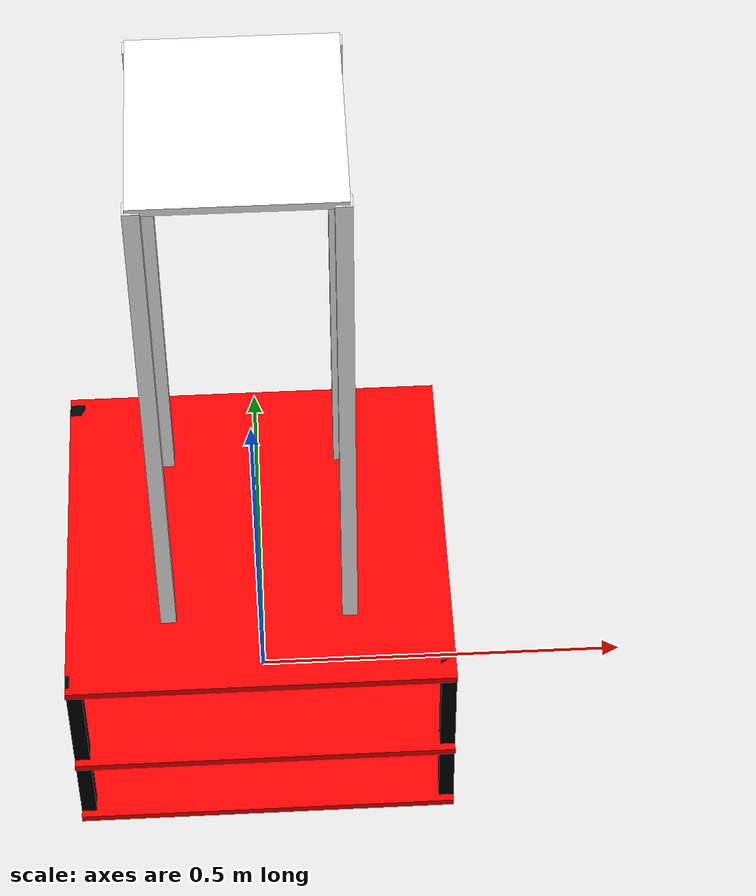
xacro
<?xml version="1.0"?>
<robot xmlns:xacro="http://www.ros.org/wiki/xacro"  name="robot">

    <xacro:arg name="use_ros2_control" default="true"/>
    <xacro:arg name="sim_mode" default="false"/>

    <xacro:include filename="robot_core.xacro" />

    <xacro:if value="$(arg use_ros2_control)">
        <xacro:include filename="ros2_control.xacro" />
    </xacro:if>
    <xacro:unless value="$(arg use_ros2_control)">
        <xacro:include filename="gazebo_control.xacro" />
    </xacro:unless>
    <xacro:include filename="lidar.xacro" />

</robot>

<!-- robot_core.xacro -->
<robot xmlns:xacro="http://www.ros.org/wiki/xacro">

  <!-- Include inertial macro definitions -->
  <xacro:include filename="inertial_macros.xacro"/>

  <!-- Materials -->
  <material name="white"><color rgba="1 1 1 1"/></material>
  <material name="blue"><color rgba="0.2 0.2 1 1"/></material>
  <material name="black"><color rgba="0 0 0 1"/></material>
  <material name="red"><color rgba="1 0 0 1"/></material>

  <!-- Base Link -->
  <link name="base_link"/>

  <!-- Chassis -->
  <joint name="chassis_joint" type="fixed">
    <parent link="base_link"/>
    <child link="chassis"/>
    <origin xyz="0 0 0"/>
  </joint>

  <link name="chassis"/>

  <!-- Top Pillars Macro -->
  <xacro:macro name="top_pillar" params="name x y z">
    <joint name="${name}_joint" type="fixed">
      <parent link="chassis"/>
      <child link="${name}"/>
      <origin xyz="${x} ${y} ${z}"/>
    </joint>
    <link name="${name}">
      <visual>
        <geometry><box size="0.02 0.02 0.74"/></geometry>
        <laser_retro>0.0</laser_retro>
        <material name="white"/>
      </visual>
      <collision>
        <geometry><box size="0.02 0.02 0.74"/></geometry>
      </collision>
      <xacro:inertial_box mass="0.3" x="0.02" y="0.02" z="0.74">
        <origin xyz="0 0 0" rpy="0 0 0"/>
      </xacro:inertial_box>
    </link>
  </xacro:macro>

  <!-- Top Four Pillars -->
  <xacro:top_pillar name="top_pillar_fl" x="0.1175" y="0.1325" z="0.66"/>
  <xacro:top_pillar name="top_pillar_fr" x="0.1175" y="-0.1325" z="0.66"/>
  <xacro:top_pillar name="top_pillar_rl" x="-0.1175" y="0.1325" z="0.66"/>
  <xacro:top_pillar name="top_pillar_rr" x="-0.1175" y="-0.1325" z="0.66"/>

  <!-- Bottom Pillars Macro -->
  <!-- Bottom Pillars Macro -->
<xacro:macro name="pillar" params="name x y z">
  <joint name="${name}_joint" type="fixed">
    <parent link="chassis"/>
    <child link="${name}"/>
    <origin xyz="${x} ${y} ${z}"/>
  </joint>
  <link name="${name}">
    <visual>
      <geometry><box size="0.02 0.02 0.29"/></geometry>
      <material name="black"/>
    </visual>
    <collision>
      <geometry><box size="0.02 0.02 0.29"/></geometry>
    </collision>
    <xacro:inertial_box mass="0.1" x="0.02" y="0.02" z="0.29">
      <origin xyz="0 0 0" rpy="0 0 0"/>
    </xacro:inertial_box>
  </link>
</xacro:macro>

  <!-- Four Bottom Pillars -->
  <xacro:pillar name="pillar_fl" x="0.24" y="0.23" z="0.145"/>
  <xacro:pillar name="pillar_fr" x="0.24" y="-0.23" z="0.145"/>
  <xacro:pillar name="pillar_rl" x="-0.24" y="0.23" z="0.145"/>
  <xacro:pillar name="pillar_rr" x="-0.24" y="-0.23" z="0.145"/>

  <!-- Plates Macro -->
  <xacro:macro name="plate" params="name z">
    <joint name="${name}_joint" type="fixed">
      <parent link="chassis"/>
      <child link="${name}"/>
      <origin xyz="0 0 ${z}"/>
    </joint>
    <link name="${name}">
      <visual>
        <geometry><box size="0.5 0.5 0.01"/></geometry>
        <material name="red"/>
      </visual>
      <collision>
        <geometry><box size="0.5 0.5 0.01"/></geometry>
      </collision>
      <xacro:inertial_box mass="0.2" x="0.5" y="0.5" z="0.01">
        <origin xyz="0 0 0" rpy="0 0 0"/>
      </xacro:inertial_box>
    </link>
  </xacro:macro>
<!--Top Plates Macro -->
  <xacro:macro name="top_plate" params="name z">
    <joint name="${name}_joint" type="fixed">
      <parent link="chassis"/>
      <child link="${name}"/>
      <origin xyz="0 0 ${z}"/>
    </joint>
    <link name="${name}">
      <visual>
        <geometry><box size="0.25 0.28 0.01"/></geometry>
        <material name="white"/>
      </visual>
      <collision>
        <geometry><box size="0.255 0.285 0.01"/></geometry>
      </collision>
      <xacro:inertial_box mass="0.2" x="0.255" y="0.285" z="0.01">
        <origin xyz="0 0 0" rpy="0 0 0"/>
      </xacro:inertial_box>
    </link>
  </xacro:macro>
   <!-- Top Plate -->
<xacro:top_plate name="plate_top_cover" z="1.03"/>

  <!-- Three Plates -->
  <xacro:plate name="plate_bottom" z="0.005"/>
  <xacro:plate name="plate_middle" z="0.125"/>
  <xacro:plate name="plate_top" z="0.285"/>

  <!-- Wheels Macro -->
  <!-- Wheels Macro -->
<xacro:macro name="wheel" params="name x y rpy_x rpy_y rpy_z direction fixed:=false">
  <xacro:if value="${fixed == 'true'}">
    <joint name="${name}_joint" type="fixed">
      <parent link="base_link"/>
      <child link="${name}"/>
      <origin xyz="${x} ${y} -0.015" rpy="${rpy_x} ${rpy_y} ${rpy_z}"/>
    </joint>
  </xacro:if>
  <xacro:unless value="${fixed == 'true'}">
    <joint name="${name}_joint" type="continuous">
      <parent link="base_link"/>
      <child link="${name}"/>
      <origin xyz="${x} ${y} -0.015" rpy="${rpy_x} ${rpy_y} ${rpy_z}"/>
      <axis xyz="0 0 ${direction}"/>
    </joint>
  </xacro:unless>
  <link name="${name}">
    <visual>
      <geometry><cylinder radius="0.055" length="0.03"/></geometry>
      <material name="blue"/>
    </visual>
    <collision>
      <geometry><cylinder radius="0.055" length="0.03"/></geometry>
    </collision>
    <xacro:inertial_cylinder mass="1.5" length="0.03" radius="0.055">
      <origin xyz="0 0 0" rpy="0 0 0"/>
    </xacro:inertial_cylinder>
  </link>
</xacro:macro>

<!-- Gazeboo -->

  <!-- Four Wheels -->
  <!-- Rear Wheels: motor-driven -->
<xacro:wheel name="rear_left_wheel"  x="-0.13" y="0.135"  rpy_x="-${pi/2}" rpy_y="0" rpy_z="0" direction="1"/>
<xacro:wheel name="rear_right_wheel" x="-0.13" y="-0.135" rpy_x="${pi/2}"  rpy_y="0" rpy_z="0" direction="-1"/>

<!-- Front Wheels: fixed -->
<xacro:wheel name="front_left_wheel" x="0.13"  y="0.135"  rpy_x="-${pi/2}" rpy_y="0" rpy_z="0" direction="1" fixed="true"/>
<xacro:wheel name="front_right_wheel" x="0.13" y="-0.135" rpy_x="${pi/2}"  rpy_y="0" rpy_z="0" direction="-1" fixed="true"/>

<!-- Gazebo Material Assignments -->

<!-- Plates -->
<gazebo reference="plate_bottom"><material>Gazebo/Red</material></gazebo>
<gazebo reference="plate_middle"><material>Gazebo/Red</material></gazebo>
<gazebo reference="plate_top"><material>Gazebo/Red</material></gazebo>
<gazebo reference="plate_top_cover"><material>Gazebo/White</material></gazebo>

<!-- Pillars -->
<gazebo reference="pillar_fl"><material>Gazebo/Black</material></gazebo>
<gazebo reference="pillar_fr"><material>Gazebo/Black</material></gazebo>
<gazebo reference="pillar_rl"><material>Gazebo/Black</material></gazebo>
<gazebo reference="pillar_rr"><material>Gazebo/Black</material></gazebo>

<gazebo reference="top_pillar_fl"><material>Gazebo/White</material></gazebo>
<gazebo reference="top_pillar_fr"><material>Gazebo/White</material></gazebo>
<gazebo reference="top_pillar_rl"><material>Gazebo/White</material></gazebo>
<gazebo reference="top_pillar_rr"><material>Gazebo/White</material></gazebo>

<!-- Chassis -->
<gazebo reference="chassis"><material>Gazebo/White</material></gazebo>

<!-- Wheels -->
<gazebo reference="rear_left_wheel"><material>Gazebo/Blue</material></gazebo>
<gazebo reference="rear_right_wheel"><material>Gazebo/Blue</material></gazebo>
<gazebo reference="front_left_wheel"><material>Gazebo/Blue</material><mu1 value="0.001"/><mu2 value="0.001"/></gazebo>
<gazebo reference="front_right_wheel"><material>Gazebo/Blue</material><mu1 value="0.001"/><mu2 value="0.001"/></gazebo>

  <!-- Base Footprint Frame -->
  <joint name="base_footprint_joint" type="fixed">
    <parent link="base_link"/>
    <child link="base_footprint"/>
    <origin xyz="0 0 0" rpy="0 0 0"/>
  </joint>

  <link name="base_footprint"/>

</robot>

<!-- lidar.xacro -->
<robot xmlns:xacro="http://www.ros.org/wiki/xacro" >

    <joint name="laser_joint" type="fixed">
        <parent link="chassis"/>
        <child link="laser_frame"/>
        <origin xyz="0 0 0.1575" rpy="0 0 0"/>
    </joint>

    <link name="laser_frame">
        <visual>
            <geometry>
                <cylinder radius="0.05" length="0.04"/>
            </geometry>
            <material name="white"/>
        </visual>
        <collision>
            <geometry>
                <cylinder radius="0.05" length="0.04"/>
            </geometry>
        </collision>
        <xacro:inertial_cylinder mass="0.1" length="0.04" radius="0.05">
            <origin xyz="0 0 0" rpy="0 0 0"/>
        </xacro:inertial_cylinder>
    </link>

    <gazebo reference="laser_frame">
        <material>Gazebo/white</material>

        <sensor name="laser" type="ray">
            <pose> 0 0 0 0 0 0 </pose>
            <visualize>false</visualize>
            <update_rate>10</update_rate>
            <ray>
                <scan>
                    <horizontal>
                        <samples>360</samples>
                        <min_angle>-3.14</min_angle>
                        <max_angle>3.14</max_angle>
                    </horizontal>
                </scan>
                <range>
                    <min>0.3475</min>
                    <max>12</max>
                </range>
            </ray>
            <plugin name="laser_controller" filename="libgazebo_ros_ray_sensor.so">
                <ros>
                    <argument>~/out:=scan</argument>
                </ros>
                <output_type>sensor_msgs/LaserScan</output_type>
                <frame_name>laser_frame</frame_name>
            </plugin>
        </sensor>
    </gazebo>

</robot>
